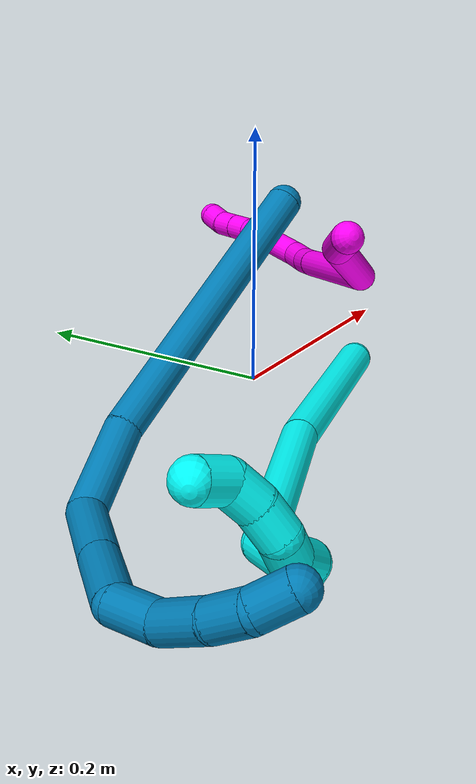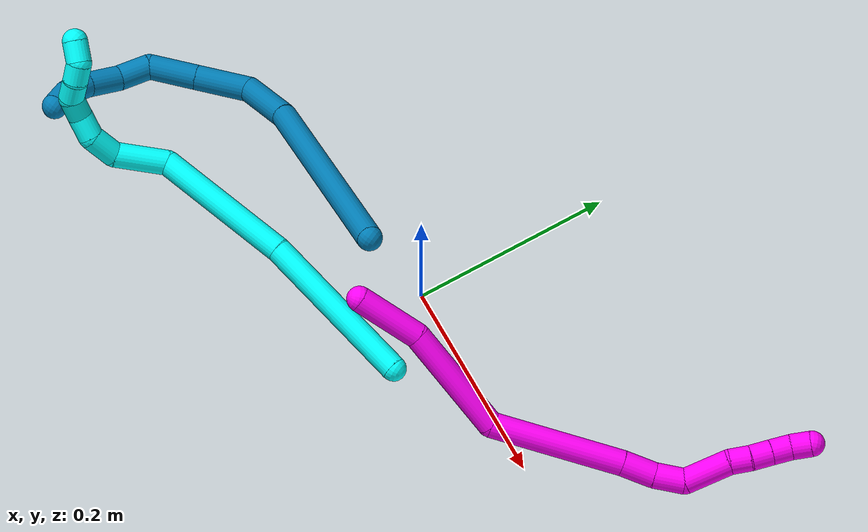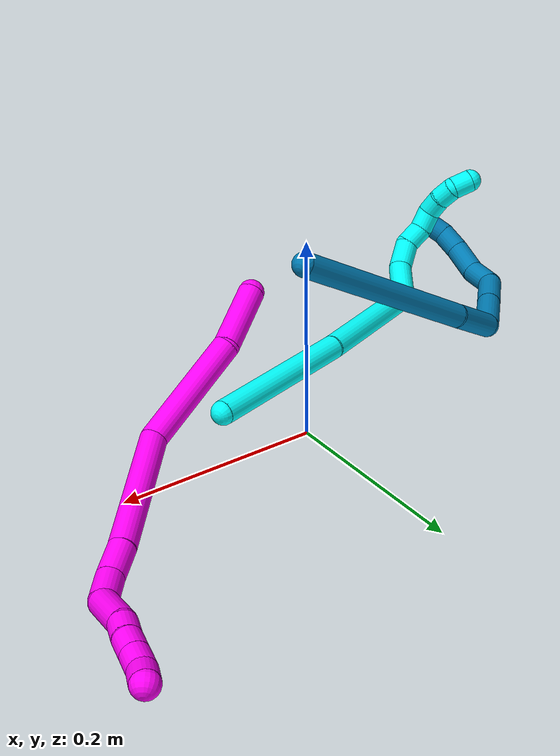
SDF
<sdf version="1.7">
 <world name="default">
  <model name="3">
   <static>0</static>
   <link name="3">
    <collision name="collision-cylinder-e_1_1_4">
     <pose>-0.014549 -0.007096 0.08056 0.08786 -0.177996 -0.007845</pose>
     <geometry><cylinder><radius>0.0125</radius><length>0.16434</length></cylinder></geometry>
     <surface>
      <friction><ode><mu>1.16</mu><mu2>1.16</mu2><slip1>0</slip1><slip2>0</slip2></ode></friction>
      <contact><ode><kp>1e+06</kp><kd>1</kd><max_vel>0</max_vel><min_depth>0.001</min_depth></ode></contact>
     </surface>
    </collision>
    <visual name="visual-cylinder-e_1_1_4">
     <pose>-0.014549 -0.007096 0.08056 0.08786 -0.177996 -0.007845</pose>
     <geometry><cylinder><radius>0.0125</radius><length>0.16434</length></cylinder></geometry>
     <material><ambient>0.003922 1 0.996078 1</ambient></material>
    </visual>
    <collision name="collision-cylinder-e_2_4_5">
     <pose>-0.032626 -0.018945 0.232584 0.066409 -0.049224 -0.001635</pose>
     <geometry><cylinder><radius>0.0125</radius><length>0.143418</length></cylinder></geometry>
     <surface>
      <friction><ode><mu>1.16</mu><mu2>1.16</mu2><slip1>0</slip1><slip2>0</slip2></ode></friction>
      <contact><ode><kp>1e+06</kp><kd>1</kd><max_vel>0</max_vel><min_depth>0.001</min_depth></ode></contact>
     </surface>
    </collision>
    <visual name="visual-cylinder-e_2_4_5">
     <pose>-0.032626 -0.018945 0.232584 0.066409 -0.049224 -0.001635</pose>
     <geometry><cylinder><radius>0.0125</radius><length>0.143418</length></cylinder></geometry>
     <material><ambient>0.003922 1 0.996078 1</ambient></material>
    </visual>
    <collision name="collision-cylinder-e_3_5_6">
     <pose>-0.026898 -0.012941 0.326605 -0.445 0.354713 -0.08106</pose>
     <geometry><cylinder><radius>0.0125</radius><length>0.053299</length></cylinder></geometry>
     <surface>
      <friction><ode><mu>1.16</mu><mu2>1.16</mu2><slip1>0</slip1><slip2>0</slip2></ode></friction>
      <contact><ode><kp>1e+06</kp><kd>1</kd><max_vel>0</max_vel><min_depth>0.001</min_depth></ode></contact>
     </surface>
    </collision>
    <visual name="visual-cylinder-e_3_5_6">
     <pose>-0.026898 -0.012941 0.326605 -0.445 0.354713 -0.08106</pose>
     <geometry><cylinder><radius>0.0125</radius><length>0.053299</length></cylinder></geometry>
     <material><ambient>0.003922 1 0.996078 1</ambient></material>
    </visual>
    <collision name="collision-cylinder-e_4_6_7">
     <pose>-0.020656 0.007183 0.360978 -0.670259 -0.197256 0.068894</pose>
     <geometry><cylinder><radius>0.0125</radius><length>0.030753</length></cylinder></geometry>
     <surface>
      <friction><ode><mu>1.16</mu><mu2>1.16</mu2><slip1>0</slip1><slip2>0</slip2></ode></friction>
      <contact><ode><kp>1e+06</kp><kd>1</kd><max_vel>0</max_vel><min_depth>0.001</min_depth></ode></contact>
     </surface>
    </collision>
    <visual name="visual-cylinder-e_4_6_7">
     <pose>-0.020656 0.007183 0.360978 -0.670259 -0.197256 0.068894</pose>
     <geometry><cylinder><radius>0.0125</radius><length>0.030753</length></cylinder></geometry>
     <material><ambient>0.003922 1 0.996078 1</ambient></material>
    </visual>
    <collision name="collision-cylinder-e_5_7_8">
     <pose>-0.030211 0.020069 0.382076 -0.362444 -0.582693 0.109785</pose>
     <geometry><cylinder><radius>0.0125</radius><length>0.023777</length></cylinder></geometry>
     <surface>
      <friction><ode><mu>1.16</mu><mu2>1.16</mu2><slip1>0</slip1><slip2>0</slip2></ode></friction>
      <contact><ode><kp>1e+06</kp><kd>1</kd><max_vel>0</max_vel><min_depth>0.001</min_depth></ode></contact>
     </surface>
    </collision>
    <visual name="visual-cylinder-e_5_7_8">
     <pose>-0.030211 0.020069 0.382076 -0.362444 -0.582693 0.109785</pose>
     <geometry><cylinder><radius>0.0125</radius><length>0.023777</length></cylinder></geometry>
     <material><ambient>0.003922 1 0.996078 1</ambient></material>
    </visual>
    <collision name="collision-cylinder-e_6_8_9">
     <pose>-0.043046 0.03055 0.397513 -0.846794 -0.5952 0.274698</pose>
     <geometry><cylinder><radius>0.0125</radius><length>0.022445</length></cylinder></geometry>
     <surface>
      <friction><ode><mu>1.16</mu><mu2>1.16</mu2><slip1>0</slip1><slip2>0</slip2></ode></friction>
      <contact><ode><kp>1e+06</kp><kd>1</kd><max_vel>0</max_vel><min_depth>0.001</min_depth></ode></contact>
     </surface>
    </collision>
    <visual name="visual-cylinder-e_6_8_9">
     <pose>-0.043046 0.03055 0.397513 -0.846794 -0.5952 0.274698</pose>
     <geometry><cylinder><radius>0.0125</radius><length>0.022445</length></cylinder></geometry>
     <material><ambient>0.003922 1 0.996078 1</ambient></material>
    </visual>
    <collision name="collision-cylinder-e_7_9_10">
     <pose>-0.058362 0.04221 0.404789 -1.3365 -1.0794 0.883431</pose>
     <geometry><cylinder><radius>0.0125</radius><length>0.020471</length></cylinder></geometry>
     <surface>
      <friction><ode><mu>1.16</mu><mu2>1.16</mu2><slip1>0</slip1><slip2>0</slip2></ode></friction>
      <contact><ode><kp>1e+06</kp><kd>1</kd><max_vel>0</max_vel><min_depth>0.001</min_depth></ode></contact>
     </surface>
    </collision>
    <visual name="visual-cylinder-e_7_9_10">
     <pose>-0.058362 0.04221 0.404789 -1.3365 -1.0794 0.883431</pose>
     <geometry><cylinder><radius>0.0125</radius><length>0.020471</length></cylinder></geometry>
     <material><ambient>0.003922 1 0.996078 1</ambient></material>
    </visual>
    <collision name="collision-cylinder-e_8_10_11">
     <pose>-0.076729 0.04982 0.408074 -0.931902 -1.20037 0.662959</pose>
     <geometry><cylinder><radius>0.0125</radius><length>0.020045</length></cylinder></geometry>
     <surface>
      <friction><ode><mu>1.16</mu><mu2>1.16</mu2><slip1>0</slip1><slip2>0</slip2></ode></friction>
      <contact><ode><kp>1e+06</kp><kd>1</kd><max_vel>0</max_vel><min_depth>0.001</min_depth></ode></contact>
     </surface>
    </collision>
    <visual name="visual-cylinder-e_8_10_11">
     <pose>-0.076729 0.04982 0.408074 -0.931902 -1.20037 0.662959</pose>
     <geometry><cylinder><radius>0.0125</radius><length>0.020045</length></cylinder></geometry>
     <material><ambient>0.003922 1 0.996078 1</ambient></material>
    </visual>
    <collision name="collision-cylinder-e_9_11_2">
     <pose>-0.093725 0.05228 0.41774 0.060165 -0.794404 -0.025245</pose>
     <geometry><cylinder><radius>0.0125</radius><length>0.021452</length></cylinder></geometry>
     <surface>
      <friction><ode><mu>1.16</mu><mu2>1.16</mu2><slip1>0</slip1><slip2>0</slip2></ode></friction>
      <contact><ode><kp>1e+06</kp><kd>1</kd><max_vel>0</max_vel><min_depth>0.001</min_depth></ode></contact>
     </surface>
    </collision>
    <visual name="visual-cylinder-e_9_11_2">
     <pose>-0.093725 0.05228 0.41774 0.060165 -0.794404 -0.025245</pose>
     <geometry><cylinder><radius>0.0125</radius><length>0.021452</length></cylinder></geometry>
     <material><ambient>0.003922 1 0.996078 1</ambient></material>
    </visual>
    <collision name="collision-sphere-2">
     <pose>-0.101377 0.051829 0.425242 0 -0 0</pose>
     <geometry><sphere><radius>0.0125</radius></sphere></geometry>
     <surface>
      <friction><ode><mu>1.16</mu><mu2>1.16</mu2><slip1>0</slip1><slip2>0</slip2></ode></friction>
      <contact><ode><kp>1e+06</kp><kd>1</kd><max_vel>0</max_vel><min_depth>0.001</min_depth></ode></contact>
     </surface>
    </collision>
    <visual name="visual-sphere-2">
     <pose>-0.101377 0.051829 0.425242 0 -0 0</pose>
     <geometry><sphere><radius>0.0125</radius></sphere></geometry>
     <material><ambient>0.003922 1 0.996078 1</ambient></material>
    </visual>
    <collision name="collision-sphere-11">
     <pose>-0.086072 0.052732 0.410238 0 -0 0</pose>
     <geometry><sphere><radius>0.0125</radius></sphere></geometry>
     <surface>
      <friction><ode><mu>1.16</mu><mu2>1.16</mu2><slip1>0</slip1><slip2>0</slip2></ode></friction>
      <contact><ode><kp>1e+06</kp><kd>1</kd><max_vel>0</max_vel><min_depth>0.001</min_depth></ode></contact>
     </surface>
    </collision>
    <visual name="visual-sphere-11">
     <pose>-0.086072 0.052732 0.410238 0 -0 0</pose>
     <geometry><sphere><radius>0.0125</radius></sphere></geometry>
     <material><ambient>0.003922 1 0.996078 1</ambient></material>
    </visual>
    <collision name="collision-sphere-10">
     <pose>-0.067387 0.046907 0.405911 0 -0 0</pose>
     <geometry><sphere><radius>0.0125</radius></sphere></geometry>
     <surface>
      <friction><ode><mu>1.16</mu><mu2>1.16</mu2><slip1>0</slip1><slip2>0</slip2></ode></friction>
      <contact><ode><kp>1e+06</kp><kd>1</kd><max_vel>0</max_vel><min_depth>0.001</min_depth></ode></contact>
     </surface>
    </collision>
    <visual name="visual-sphere-10">
     <pose>-0.067387 0.046907 0.405911 0 -0 0</pose>
     <geometry><sphere><radius>0.0125</radius></sphere></geometry>
     <material><ambient>0.003922 1 0.996078 1</ambient></material>
    </visual>
    <collision name="collision-sphere-9">
     <pose>-0.049338 0.037512 0.403668 0 -0 0</pose>
     <geometry><sphere><radius>0.0125</radius></sphere></geometry>
     <surface>
      <friction><ode><mu>1.16</mu><mu2>1.16</mu2><slip1>0</slip1><slip2>0</slip2></ode></friction>
      <contact><ode><kp>1e+06</kp><kd>1</kd><max_vel>0</max_vel><min_depth>0.001</min_depth></ode></contact>
     </surface>
    </collision>
    <visual name="visual-sphere-9">
     <pose>-0.049338 0.037512 0.403668 0 -0 0</pose>
     <geometry><sphere><radius>0.0125</radius></sphere></geometry>
     <material><ambient>0.003922 1 0.996078 1</ambient></material>
    </visual>
    <collision name="collision-sphere-4">
     <pose>-0.029098 -0.014193 0.16112 0 -0 0</pose>
     <geometry><sphere><radius>0.0125</radius></sphere></geometry>
     <surface>
      <friction><ode><mu>1.16</mu><mu2>1.16</mu2><slip1>0</slip1><slip2>0</slip2></ode></friction>
      <contact><ode><kp>1e+06</kp><kd>1</kd><max_vel>0</max_vel><min_depth>0.001</min_depth></ode></contact>
     </surface>
    </collision>
    <visual name="visual-sphere-4">
     <pose>-0.029098 -0.014193 0.16112 0 -0 0</pose>
     <geometry><sphere><radius>0.0125</radius></sphere></geometry>
     <material><ambient>0.003922 1 0.996078 1</ambient></material>
    </visual>
    <collision name="collision-sphere-1">
     <geometry><sphere><radius>0.0125</radius></sphere></geometry>
     <surface>
      <friction><ode><mu>1.16</mu><mu2>1.16</mu2><slip1>0</slip1><slip2>0</slip2></ode></friction>
      <contact><ode><kp>1e+06</kp><kd>1</kd><max_vel>0</max_vel><min_depth>0.001</min_depth></ode></contact>
     </surface>
    </collision>
    <visual name="visual-sphere-1">
     <geometry><sphere><radius>0.0125</radius></sphere></geometry>
     <material><ambient>0.003922 1 0.996078 1</ambient></material>
    </visual>
    <collision name="collision-sphere-8">
     <pose>-0.036753 0.023588 0.391357 0 -0 0</pose>
     <geometry><sphere><radius>0.0125</radius></sphere></geometry>
     <surface>
      <friction><ode><mu>1.16</mu><mu2>1.16</mu2><slip1>0</slip1><slip2>0</slip2></ode></friction>
      <contact><ode><kp>1e+06</kp><kd>1</kd><max_vel>0</max_vel><min_depth>0.001</min_depth></ode></contact>
     </surface>
    </collision>
    <visual name="visual-sphere-8">
     <pose>-0.036753 0.023588 0.391357 0 -0 0</pose>
     <geometry><sphere><radius>0.0125</radius></sphere></geometry>
     <material><ambient>0.003922 1 0.996078 1</ambient></material>
    </visual>
    <collision name="collision-sphere-5">
     <pose>-0.036154 -0.023698 0.304048 0 -0 0</pose>
     <geometry><sphere><radius>0.0125</radius></sphere></geometry>
     <surface>
      <friction><ode><mu>1.16</mu><mu2>1.16</mu2><slip1>0</slip1><slip2>0</slip2></ode></friction>
      <contact><ode><kp>1e+06</kp><kd>1</kd><max_vel>0</max_vel><min_depth>0.001</min_depth></ode></contact>
     </surface>
    </collision>
    <visual name="visual-sphere-5">
     <pose>-0.036154 -0.023698 0.304048 0 -0 0</pose>
     <geometry><sphere><radius>0.0125</radius></sphere></geometry>
     <material><ambient>0.003922 1 0.996078 1</ambient></material>
    </visual>
    <collision name="collision-sphere-6">
     <pose>-0.017643 -0.002184 0.349161 0 -0 0</pose>
     <geometry><sphere><radius>0.0125</radius></sphere></geometry>
     <surface>
      <friction><ode><mu>1.16</mu><mu2>1.16</mu2><slip1>0</slip1><slip2>0</slip2></ode></friction>
      <contact><ode><kp>1e+06</kp><kd>1</kd><max_vel>0</max_vel><min_depth>0.001</min_depth></ode></contact>
     </surface>
    </collision>
    <visual name="visual-sphere-6">
     <pose>-0.017643 -0.002184 0.349161 0 -0 0</pose>
     <geometry><sphere><radius>0.0125</radius></sphere></geometry>
     <material><ambient>0.003922 1 0.996078 1</ambient></material>
    </visual>
    <collision name="collision-sphere-7">
     <pose>-0.02367 0.016549 0.372794 0 -0 0</pose>
     <geometry><sphere><radius>0.0125</radius></sphere></geometry>
     <surface>
      <friction><ode><mu>1.16</mu><mu2>1.16</mu2><slip1>0</slip1><slip2>0</slip2></ode></friction>
      <contact><ode><kp>1e+06</kp><kd>1</kd><max_vel>0</max_vel><min_depth>0.001</min_depth></ode></contact>
     </surface>
    </collision>
    <visual name="visual-sphere-7">
     <pose>-0.02367 0.016549 0.372794 0 -0 0</pose>
     <geometry><sphere><radius>0.0125</radius></sphere></geometry>
     <material><ambient>0.003922 1 0.996078 1</ambient></material>
    </visual>
    <inertial>
     <pose>-0.031134 -0.00041 0.237078 0 -0 0</pose>
     <mass>0.5</mass>
     <inertia>
      <ixx>0.000633</ixx>
      <ixy>0</ixy>
      <ixz>0</ixz>
      <iyy>0.000651</iyy>
      <iyz>0</iyz>
      <izz>0.000152</izz>
     </inertia>
    </inertial>
   </link>
   <pose>0.054867 -0.06134 0.012221 1.56085 0.502055 -1.13867</pose>
  </model>
  <model name="9">
   <static>0</static>
   <link name="9">
    <collision name="collision-cylinder-e_1_1_4">
     <pose>-0.050338 0.060957 0.07365 -0.69138 -0.484639 0.177574</pose>
     <geometry><cylinder><radius>0.0125</radius><length>0.216093</length></cylinder></geometry>
     <surface>
      <friction><ode><mu>1.16</mu><mu2>1.16</mu2><slip1>0</slip1><slip2>0</slip2></ode></friction>
      <contact><ode><kp>1e+06</kp><kd>1</kd><max_vel>0</max_vel><min_depth>0.001</min_depth></ode></contact>
     </surface>
    </collision>
    <visual name="visual-cylinder-e_1_1_4">
     <pose>-0.050338 0.060957 0.07365 -0.69138 -0.484639 0.177574</pose>
     <geometry><cylinder><radius>0.0125</radius><length>0.216093</length></cylinder></geometry>
     <material><ambient>0 0.490196 0.709804 1</ambient></material>
    </visual>
    <collision name="collision-cylinder-e_2_4_5">
     <pose>-0.117917 0.134021 0.170887 -0.474203 -0.576623 0.143088</pose>
     <geometry><cylinder><radius>0.0125</radius><length>0.063251</length></cylinder></geometry>
     <surface>
      <friction><ode><mu>1.16</mu><mu2>1.16</mu2><slip1>0</slip1><slip2>0</slip2></ode></friction>
      <contact><ode><kp>1e+06</kp><kd>1</kd><max_vel>0</max_vel><min_depth>0.001</min_depth></ode></contact>
     </surface>
    </collision>
    <visual name="visual-cylinder-e_2_4_5">
     <pose>-0.117917 0.134021 0.170887 -0.474203 -0.576623 0.143088</pose>
     <geometry><cylinder><radius>0.0125</radius><length>0.063251</length></cylinder></geometry>
     <material><ambient>0 0.490196 0.709804 1</ambient></material>
    </visual>
    <collision name="collision-cylinder-e_3_5_6">
     <pose>-0.142414 0.138209 0.219318 0.308505 -0.271356 -0.042447</pose>
     <geometry><cylinder><radius>0.0125</radius><length>0.054133</length></cylinder></geometry>
     <surface>
      <friction><ode><mu>1.16</mu><mu2>1.16</mu2><slip1>0</slip1><slip2>0</slip2></ode></friction>
      <contact><ode><kp>1e+06</kp><kd>1</kd><max_vel>0</max_vel><min_depth>0.001</min_depth></ode></contact>
     </surface>
    </collision>
    <visual name="visual-cylinder-e_3_5_6">
     <pose>-0.142414 0.138209 0.219318 0.308505 -0.271356 -0.042447</pose>
     <geometry><cylinder><radius>0.0125</radius><length>0.054133</length></cylinder></geometry>
     <material><ambient>0 0.490196 0.709804 1</ambient></material>
    </visual>
    <collision name="collision-cylinder-e_4_6_7">
     <pose>-0.15549 0.12284 0.266257 0.325306 -0.244642 -0.040342</pose>
     <geometry><cylinder><radius>0.0125</radius><length>0.048064</length></cylinder></geometry>
     <surface>
      <friction><ode><mu>1.16</mu><mu2>1.16</mu2><slip1>0</slip1><slip2>0</slip2></ode></friction>
      <contact><ode><kp>1e+06</kp><kd>1</kd><max_vel>0</max_vel><min_depth>0.001</min_depth></ode></contact>
     </surface>
    </collision>
    <visual name="visual-cylinder-e_4_6_7">
     <pose>-0.15549 0.12284 0.266257 0.325306 -0.244642 -0.040342</pose>
     <geometry><cylinder><radius>0.0125</radius><length>0.048064</length></cylinder></geometry>
     <material><ambient>0 0.490196 0.709804 1</ambient></material>
    </visual>
    <collision name="collision-cylinder-e_5_7_8">
     <pose>-0.165951 0.102274 0.296809 0.997915 -0.289036 -0.158284</pose>
     <geometry><cylinder><radius>0.0125</radius><length>0.032563</length></cylinder></geometry>
     <surface>
      <friction><ode><mu>1.16</mu><mu2>1.16</mu2><slip1>0</slip1><slip2>0</slip2></ode></friction>
      <contact><ode><kp>1e+06</kp><kd>1</kd><max_vel>0</max_vel><min_depth>0.001</min_depth></ode></contact>
     </surface>
    </collision>
    <visual name="visual-cylinder-e_5_7_8">
     <pose>-0.165951 0.102274 0.296809 0.997915 -0.289036 -0.158284</pose>
     <geometry><cylinder><radius>0.0125</radius><length>0.032563</length></cylinder></geometry>
     <material><ambient>0 0.490196 0.709804 1</ambient></material>
    </visual>
    <collision name="collision-cylinder-e_6_8_9">
     <pose>-0.169144 0.074179 0.314557 1.01581 0.081963 0.045639</pose>
     <geometry><cylinder><radius>0.0125</radius><length>0.035372</length></cylinder></geometry>
     <surface>
      <friction><ode><mu>1.16</mu><mu2>1.16</mu2><slip1>0</slip1><slip2>0</slip2></ode></friction>
      <contact><ode><kp>1e+06</kp><kd>1</kd><max_vel>0</max_vel><min_depth>0.001</min_depth></ode></contact>
     </surface>
    </collision>
    <visual name="visual-cylinder-e_6_8_9">
     <pose>-0.169144 0.074179 0.314557 1.01581 0.081963 0.045639</pose>
     <geometry><cylinder><radius>0.0125</radius><length>0.035372</length></cylinder></geometry>
     <material><ambient>0 0.490196 0.709804 1</ambient></material>
    </visual>
    <collision name="collision-cylinder-e_7_9_10">
     <pose>-0.16581 0.047402 0.328581 1.18895 0.147297 0.099679</pose>
     <geometry><cylinder><radius>0.0125</radius><length>0.025702</length></cylinder></geometry>
     <surface>
      <friction><ode><mu>1.16</mu><mu2>1.16</mu2><slip1>0</slip1><slip2>0</slip2></ode></friction>
      <contact><ode><kp>1e+06</kp><kd>1</kd><max_vel>0</max_vel><min_depth>0.001</min_depth></ode></contact>
     </surface>
    </collision>
    <visual name="visual-cylinder-e_7_9_10">
     <pose>-0.16581 0.047402 0.328581 1.18895 0.147297 0.099679</pose>
     <geometry><cylinder><radius>0.0125</radius><length>0.025702</length></cylinder></geometry>
     <material><ambient>0 0.490196 0.709804 1</ambient></material>
    </visual>
    <collision name="collision-cylinder-e_8_10_2">
     <pose>-0.161298 0.023481 0.332906 1.6048 0.213142 0.220458</pose>
     <geometry><cylinder><radius>0.0125</radius><length>0.024824</length></cylinder></geometry>
     <surface>
      <friction><ode><mu>1.16</mu><mu2>1.16</mu2><slip1>0</slip1><slip2>0</slip2></ode></friction>
      <contact><ode><kp>1e+06</kp><kd>1</kd><max_vel>0</max_vel><min_depth>0.001</min_depth></ode></contact>
     </surface>
    </collision>
    <visual name="visual-cylinder-e_8_10_2">
     <pose>-0.161298 0.023481 0.332906 1.6048 0.213142 0.220458</pose>
     <geometry><cylinder><radius>0.0125</radius><length>0.024824</length></cylinder></geometry>
     <material><ambient>0 0.490196 0.709804 1</ambient></material>
    </visual>
    <collision name="collision-sphere-2">
     <pose>-0.158673 0.011357 0.332493 0 -0 0</pose>
     <geometry><sphere><radius>0.0125</radius></sphere></geometry>
     <surface>
      <friction><ode><mu>1.16</mu><mu2>1.16</mu2><slip1>0</slip1><slip2>0</slip2></ode></friction>
      <contact><ode><kp>1e+06</kp><kd>1</kd><max_vel>0</max_vel><min_depth>0.001</min_depth></ode></contact>
     </surface>
    </collision>
    <visual name="visual-sphere-2">
     <pose>-0.158673 0.011357 0.332493 0 -0 0</pose>
     <geometry><sphere><radius>0.0125</radius></sphere></geometry>
     <material><ambient>0 0.490196 0.709804 1</ambient></material>
    </visual>
    <collision name="collision-sphere-10">
     <pose>-0.163924 0.035605 0.333318 0 -0 0</pose>
     <geometry><sphere><radius>0.0125</radius></sphere></geometry>
     <surface>
      <friction><ode><mu>1.16</mu><mu2>1.16</mu2><slip1>0</slip1><slip2>0</slip2></ode></friction>
      <contact><ode><kp>1e+06</kp><kd>1</kd><max_vel>0</max_vel><min_depth>0.001</min_depth></ode></contact>
     </surface>
    </collision>
    <visual name="visual-sphere-10">
     <pose>-0.163924 0.035605 0.333318 0 -0 0</pose>
     <geometry><sphere><radius>0.0125</radius></sphere></geometry>
     <material><ambient>0 0.490196 0.709804 1</ambient></material>
    </visual>
    <collision name="collision-sphere-9">
     <pose>-0.167696 0.059198 0.323844 0 -0 0</pose>
     <geometry><sphere><radius>0.0125</radius></sphere></geometry>
     <surface>
      <friction><ode><mu>1.16</mu><mu2>1.16</mu2><slip1>0</slip1><slip2>0</slip2></ode></friction>
      <contact><ode><kp>1e+06</kp><kd>1</kd><max_vel>0</max_vel><min_depth>0.001</min_depth></ode></contact>
     </surface>
    </collision>
    <visual name="visual-sphere-9">
     <pose>-0.167696 0.059198 0.323844 0 -0 0</pose>
     <geometry><sphere><radius>0.0125</radius></sphere></geometry>
     <material><ambient>0 0.490196 0.709804 1</ambient></material>
    </visual>
    <collision name="collision-sphere-4">
     <pose>-0.100675 0.121915 0.147301 0 -0 0</pose>
     <geometry><sphere><radius>0.0125</radius></sphere></geometry>
     <surface>
      <friction><ode><mu>1.16</mu><mu2>1.16</mu2><slip1>0</slip1><slip2>0</slip2></ode></friction>
      <contact><ode><kp>1e+06</kp><kd>1</kd><max_vel>0</max_vel><min_depth>0.001</min_depth></ode></contact>
     </surface>
    </collision>
    <visual name="visual-sphere-4">
     <pose>-0.100675 0.121915 0.147301 0 -0 0</pose>
     <geometry><sphere><radius>0.0125</radius></sphere></geometry>
     <material><ambient>0 0.490196 0.709804 1</ambient></material>
    </visual>
    <collision name="collision-sphere-1">
     <geometry><sphere><radius>0.0125</radius></sphere></geometry>
     <surface>
      <friction><ode><mu>1.16</mu><mu2>1.16</mu2><slip1>0</slip1><slip2>0</slip2></ode></friction>
      <contact><ode><kp>1e+06</kp><kd>1</kd><max_vel>0</max_vel><min_depth>0.001</min_depth></ode></contact>
     </surface>
    </collision>
    <visual name="visual-sphere-1">
     <geometry><sphere><radius>0.0125</radius></sphere></geometry>
     <material><ambient>0 0.490196 0.709804 1</ambient></material>
    </visual>
    <collision name="collision-sphere-8">
     <pose>-0.170592 0.089159 0.305269 0 -0 0</pose>
     <geometry><sphere><radius>0.0125</radius></sphere></geometry>
     <surface>
      <friction><ode><mu>1.16</mu><mu2>1.16</mu2><slip1>0</slip1><slip2>0</slip2></ode></friction>
      <contact><ode><kp>1e+06</kp><kd>1</kd><max_vel>0</max_vel><min_depth>0.001</min_depth></ode></contact>
     </surface>
    </collision>
    <visual name="visual-sphere-8">
     <pose>-0.170592 0.089159 0.305269 0 -0 0</pose>
     <geometry><sphere><radius>0.0125</radius></sphere></geometry>
     <material><ambient>0 0.490196 0.709804 1</ambient></material>
    </visual>
    <collision name="collision-sphere-5">
     <pose>-0.135159 0.146127 0.194474 0 -0 0</pose>
     <geometry><sphere><radius>0.0125</radius></sphere></geometry>
     <surface>
      <friction><ode><mu>1.16</mu><mu2>1.16</mu2><slip1>0</slip1><slip2>0</slip2></ode></friction>
      <contact><ode><kp>1e+06</kp><kd>1</kd><max_vel>0</max_vel><min_depth>0.001</min_depth></ode></contact>
     </surface>
    </collision>
    <visual name="visual-sphere-5">
     <pose>-0.135159 0.146127 0.194474 0 -0 0</pose>
     <geometry><sphere><radius>0.0125</radius></sphere></geometry>
     <material><ambient>0 0.490196 0.709804 1</ambient></material>
    </visual>
    <collision name="collision-sphere-6">
     <pose>-0.149669 0.130292 0.244163 0 -0 0</pose>
     <geometry><sphere><radius>0.0125</radius></sphere></geometry>
     <surface>
      <friction><ode><mu>1.16</mu><mu2>1.16</mu2><slip1>0</slip1><slip2>0</slip2></ode></friction>
      <contact><ode><kp>1e+06</kp><kd>1</kd><max_vel>0</max_vel><min_depth>0.001</min_depth></ode></contact>
     </surface>
    </collision>
    <visual name="visual-sphere-6">
     <pose>-0.149669 0.130292 0.244163 0 -0 0</pose>
     <geometry><sphere><radius>0.0125</radius></sphere></geometry>
     <material><ambient>0 0.490196 0.709804 1</ambient></material>
    </visual>
    <collision name="collision-sphere-7">
     <pose>-0.16131 0.115388 0.28835 0 -0 0</pose>
     <geometry><sphere><radius>0.0125</radius></sphere></geometry>
     <surface>
      <friction><ode><mu>1.16</mu><mu2>1.16</mu2><slip1>0</slip1><slip2>0</slip2></ode></friction>
      <contact><ode><kp>1e+06</kp><kd>1</kd><max_vel>0</max_vel><min_depth>0.001</min_depth></ode></contact>
     </surface>
    </collision>
    <visual name="visual-sphere-7">
     <pose>-0.16131 0.115388 0.28835 0 -0 0</pose>
     <geometry><sphere><radius>0.0125</radius></sphere></geometry>
     <material><ambient>0 0.490196 0.709804 1</ambient></material>
    </visual>
    <inertial>
     <pose>-0.106342 0.085581 0.177788 0 -0 0</pose>
     <mass>0.5</mass>
     <inertia>
      <ixx>0.000921</ixx>
      <ixy>0</ixy>
      <ixz>0</ixz>
      <iyy>0.000877</iyy>
      <iyz>0</iyz>
      <izz>-2.7e-05</izz>
     </inertia>
    </inertial>
   </link>
   <pose>-0.026948 -0.040531 0.154541 -1.09056 -1.23344 1.55745</pose>
  </model>
  <model name="10">
   <static>0</static>
   <link name="10">
    <collision name="collision-cylinder-e_1_1_4">
     <pose>0.00665 0.007216 0.031538 -0.224923 0.20272 -0.022973</pose>
     <geometry><cylinder><radius>0.0125</radius><length>0.066059</length></cylinder></geometry>
     <surface>
      <friction><ode><mu>1.16</mu><mu2>1.16</mu2><slip1>0</slip1><slip2>0</slip2></ode></friction>
      <contact><ode><kp>1e+06</kp><kd>1</kd><max_vel>0</max_vel><min_depth>0.001</min_depth></ode></contact>
     </surface>
    </collision>
    <visual name="visual-cylinder-e_1_1_4">
     <pose>0.00665 0.007216 0.031538 -0.224923 0.20272 -0.022973</pose>
     <geometry><cylinder><radius>0.0125</radius><length>0.066059</length></cylinder></geometry>
     <material><ambient>1 0 0.964706 1</ambient></material>
    </visual>
    <collision name="collision-cylinder-e_2_4_5">
     <pose>0.029924 0.041208 0.109519 -0.523008 0.300702 -0.081045</pose>
     <geometry><cylinder><radius>0.0125</radius><length>0.112254</length></cylinder></geometry>
     <surface>
      <friction><ode><mu>1.16</mu><mu2>1.16</mu2><slip1>0</slip1><slip2>0</slip2></ode></friction>
      <contact><ode><kp>1e+06</kp><kd>1</kd><max_vel>0</max_vel><min_depth>0.001</min_depth></ode></contact>
     </surface>
    </collision>
    <visual name="visual-cylinder-e_2_4_5">
     <pose>0.029924 0.041208 0.109519 -0.523008 0.300702 -0.081045</pose>
     <geometry><cylinder><radius>0.0125</radius><length>0.112254</length></cylinder></geometry>
     <material><ambient>1 0 0.964706 1</ambient></material>
    </visual>
    <collision name="collision-cylinder-e_3_5_6">
     <pose>0.059163 0.0624 0.220341 0.086545 0.192775 0.008373</pose>
     <geometry><cylinder><radius>0.0125</radius><length>0.131681</length></cylinder></geometry>
     <surface>
      <friction><ode><mu>1.16</mu><mu2>1.16</mu2><slip1>0</slip1><slip2>0</slip2></ode></friction>
      <contact><ode><kp>1e+06</kp><kd>1</kd><max_vel>0</max_vel><min_depth>0.001</min_depth></ode></contact>
     </surface>
    </collision>
    <visual name="visual-cylinder-e_3_5_6">
     <pose>0.059163 0.0624 0.220341 0.086545 0.192775 0.008373</pose>
     <geometry><cylinder><radius>0.0125</radius><length>0.131681</length></cylinder></geometry>
     <material><ambient>1 0 0.964706 1</ambient></material>
    </visual>
    <collision name="collision-cylinder-e_4_6_7">
     <pose>0.075817 0.056478 0.300634 0.021135 0.248589 0.002641</pose>
     <geometry><cylinder><radius>0.0125</radius><length>0.032845</length></cylinder></geometry>
     <surface>
      <friction><ode><mu>1.16</mu><mu2>1.16</mu2><slip1>0</slip1><slip2>0</slip2></ode></friction>
      <contact><ode><kp>1e+06</kp><kd>1</kd><max_vel>0</max_vel><min_depth>0.001</min_depth></ode></contact>
     </surface>
    </collision>
    <visual name="visual-cylinder-e_4_6_7">
     <pose>0.075817 0.056478 0.300634 0.021135 0.248589 0.002641</pose>
     <geometry><cylinder><radius>0.0125</radius><length>0.032845</length></cylinder></geometry>
     <material><ambient>1 0 0.964706 1</ambient></material>
    </visual>
    <collision name="collision-cylinder-e_5_7_8">
     <pose>0.083695 0.052728 0.330654 0.237405 0.258499 0.031</pose>
     <geometry><cylinder><radius>0.0125</radius><length>0.030025</length></cylinder></geometry>
     <surface>
      <friction><ode><mu>1.16</mu><mu2>1.16</mu2><slip1>0</slip1><slip2>0</slip2></ode></friction>
      <contact><ode><kp>1e+06</kp><kd>1</kd><max_vel>0</max_vel><min_depth>0.001</min_depth></ode></contact>
     </surface>
    </collision>
    <visual name="visual-cylinder-e_5_7_8">
     <pose>0.083695 0.052728 0.330654 0.237405 0.258499 0.031</pose>
     <geometry><cylinder><radius>0.0125</radius><length>0.030025</length></cylinder></geometry>
     <material><ambient>1 0 0.964706 1</ambient></material>
    </visual>
    <collision name="collision-cylinder-e_6_8_9">
     <pose>0.08758 0.032639 0.360856 0.803133 0.002039 0.000866</pose>
     <geometry><cylinder><radius>0.0125</radius><length>0.046352</length></cylinder></geometry>
     <surface>
      <friction><ode><mu>1.16</mu><mu2>1.16</mu2><slip1>0</slip1><slip2>0</slip2></ode></friction>
      <contact><ode><kp>1e+06</kp><kd>1</kd><max_vel>0</max_vel><min_depth>0.001</min_depth></ode></contact>
     </surface>
    </collision>
    <visual name="visual-cylinder-e_6_8_9">
     <pose>0.08758 0.032639 0.360856 0.803133 0.002039 0.000866</pose>
     <geometry><cylinder><radius>0.0125</radius><length>0.046352</length></cylinder></geometry>
     <material><ambient>1 0 0.964706 1</ambient></material>
    </visual>
    <collision name="collision-cylinder-e_7_9_10">
     <pose>0.088069 0.010698 0.385607 0.546395 0.043552 0.012205</pose>
     <geometry><cylinder><radius>0.0125</radius><length>0.020283</length></cylinder></geometry>
     <surface>
      <friction><ode><mu>1.16</mu><mu2>1.16</mu2><slip1>0</slip1><slip2>0</slip2></ode></friction>
      <contact><ode><kp>1e+06</kp><kd>1</kd><max_vel>0</max_vel><min_depth>0.001</min_depth></ode></contact>
     </surface>
    </collision>
    <visual name="visual-cylinder-e_7_9_10">
     <pose>0.088069 0.010698 0.385607 0.546395 0.043552 0.012205</pose>
     <geometry><cylinder><radius>0.0125</radius><length>0.020283</length></cylinder></geometry>
     <material><ambient>1 0 0.964706 1</ambient></material>
    </visual>
    <collision name="collision-cylinder-e_8_10_11">
     <pose>0.087722 -1.1e-05 0.402765 0.569599 -0.077931 -0.022826</pose>
     <geometry><cylinder><radius>0.0125</radius><length>0.020251</length></cylinder></geometry>
     <surface>
      <friction><ode><mu>1.16</mu><mu2>1.16</mu2><slip1>0</slip1><slip2>0</slip2></ode></friction>
      <contact><ode><kp>1e+06</kp><kd>1</kd><max_vel>0</max_vel><min_depth>0.001</min_depth></ode></contact>
     </surface>
    </collision>
    <visual name="visual-cylinder-e_8_10_11">
     <pose>0.087722 -1.1e-05 0.402765 0.569599 -0.077931 -0.022826</pose>
     <geometry><cylinder><radius>0.0125</radius><length>0.020251</length></cylinder></geometry>
     <material><ambient>1 0 0.964706 1</ambient></material>
    </visual>
    <collision name="collision-cylinder-e_9_11_12">
     <pose>0.086196 -0.010791 0.419757 0.561108 -0.073429 -0.021168</pose>
     <geometry><cylinder><radius>0.0125</radius><length>0.020113</length></cylinder></geometry>
     <surface>
      <friction><ode><mu>1.16</mu><mu2>1.16</mu2><slip1>0</slip1><slip2>0</slip2></ode></friction>
      <contact><ode><kp>1e+06</kp><kd>1</kd><max_vel>0</max_vel><min_depth>0.001</min_depth></ode></contact>
     </surface>
    </collision>
    <visual name="visual-cylinder-e_9_11_12">
     <pose>0.086196 -0.010791 0.419757 0.561108 -0.073429 -0.021168</pose>
     <geometry><cylinder><radius>0.0125</radius><length>0.020113</length></cylinder></geometry>
     <material><ambient>1 0 0.964706 1</ambient></material>
    </visual>
    <collision name="collision-cylinder-e_10_12_2">
     <pose>0.087374 -0.02193 0.436252 0.627227 0.1914 0.062244</pose>
     <geometry><cylinder><radius>0.0125</radius><length>0.020136</length></cylinder></geometry>
     <surface>
      <friction><ode><mu>1.16</mu><mu2>1.16</mu2><slip1>0</slip1><slip2>0</slip2></ode></friction>
      <contact><ode><kp>1e+06</kp><kd>1</kd><max_vel>0</max_vel><min_depth>0.001</min_depth></ode></contact>
     </surface>
    </collision>
    <visual name="visual-cylinder-e_10_12_2">
     <pose>0.087374 -0.02193 0.436252 0.627227 0.1914 0.062244</pose>
     <geometry><cylinder><radius>0.0125</radius><length>0.020136</length></cylinder></geometry>
     <material><ambient>1 0 0.964706 1</ambient></material>
    </visual>
    <collision name="collision-sphere-2">
     <pose>0.089289 -0.027731 0.444255 0 -0 0</pose>
     <geometry><sphere><radius>0.0125</radius></sphere></geometry>
     <surface>
      <friction><ode><mu>1.16</mu><mu2>1.16</mu2><slip1>0</slip1><slip2>0</slip2></ode></friction>
      <contact><ode><kp>1e+06</kp><kd>1</kd><max_vel>0</max_vel><min_depth>0.001</min_depth></ode></contact>
     </surface>
    </collision>
    <visual name="visual-sphere-2">
     <pose>0.089289 -0.027731 0.444255 0 -0 0</pose>
     <geometry><sphere><radius>0.0125</radius></sphere></geometry>
     <material><ambient>1 0 0.964706 1</ambient></material>
    </visual>
    <collision name="collision-sphere-12">
     <pose>0.085458 -0.016128 0.428249 0 -0 0</pose>
     <geometry><sphere><radius>0.0125</radius></sphere></geometry>
     <surface>
      <friction><ode><mu>1.16</mu><mu2>1.16</mu2><slip1>0</slip1><slip2>0</slip2></ode></friction>
      <contact><ode><kp>1e+06</kp><kd>1</kd><max_vel>0</max_vel><min_depth>0.001</min_depth></ode></contact>
     </surface>
    </collision>
    <visual name="visual-sphere-12">
     <pose>0.085458 -0.016128 0.428249 0 -0 0</pose>
     <geometry><sphere><radius>0.0125</radius></sphere></geometry>
     <material><ambient>1 0 0.964706 1</ambient></material>
    </visual>
    <collision name="collision-sphere-11">
     <pose>0.086934 -0.005455 0.411265 0 -0 0</pose>
     <geometry><sphere><radius>0.0125</radius></sphere></geometry>
     <surface>
      <friction><ode><mu>1.16</mu><mu2>1.16</mu2><slip1>0</slip1><slip2>0</slip2></ode></friction>
      <contact><ode><kp>1e+06</kp><kd>1</kd><max_vel>0</max_vel><min_depth>0.001</min_depth></ode></contact>
     </surface>
    </collision>
    <visual name="visual-sphere-11">
     <pose>0.086934 -0.005455 0.411265 0 -0 0</pose>
     <geometry><sphere><radius>0.0125</radius></sphere></geometry>
     <material><ambient>1 0 0.964706 1</ambient></material>
    </visual>
    <collision name="collision-sphere-10">
     <pose>0.08851 0.005433 0.394264 0 -0 0</pose>
     <geometry><sphere><radius>0.0125</radius></sphere></geometry>
     <surface>
      <friction><ode><mu>1.16</mu><mu2>1.16</mu2><slip1>0</slip1><slip2>0</slip2></ode></friction>
      <contact><ode><kp>1e+06</kp><kd>1</kd><max_vel>0</max_vel><min_depth>0.001</min_depth></ode></contact>
     </surface>
    </collision>
    <visual name="visual-sphere-10">
     <pose>0.08851 0.005433 0.394264 0 -0 0</pose>
     <geometry><sphere><radius>0.0125</radius></sphere></geometry>
     <material><ambient>1 0 0.964706 1</ambient></material>
    </visual>
    <collision name="collision-sphere-9">
     <pose>0.087627 0.015963 0.37695 0 -0 0</pose>
     <geometry><sphere><radius>0.0125</radius></sphere></geometry>
     <surface>
      <friction><ode><mu>1.16</mu><mu2>1.16</mu2><slip1>0</slip1><slip2>0</slip2></ode></friction>
      <contact><ode><kp>1e+06</kp><kd>1</kd><max_vel>0</max_vel><min_depth>0.001</min_depth></ode></contact>
     </surface>
    </collision>
    <visual name="visual-sphere-9">
     <pose>0.087627 0.015963 0.37695 0 -0 0</pose>
     <geometry><sphere><radius>0.0125</radius></sphere></geometry>
     <material><ambient>1 0 0.964706 1</ambient></material>
    </visual>
    <collision name="collision-sphere-4">
     <pose>0.0133 0.014432 0.063077 0 -0 0</pose>
     <geometry><sphere><radius>0.0125</radius></sphere></geometry>
     <surface>
      <friction><ode><mu>1.16</mu><mu2>1.16</mu2><slip1>0</slip1><slip2>0</slip2></ode></friction>
      <contact><ode><kp>1e+06</kp><kd>1</kd><max_vel>0</max_vel><min_depth>0.001</min_depth></ode></contact>
     </surface>
    </collision>
    <visual name="visual-sphere-4">
     <pose>0.0133 0.014432 0.063077 0 -0 0</pose>
     <geometry><sphere><radius>0.0125</radius></sphere></geometry>
     <material><ambient>1 0 0.964706 1</ambient></material>
    </visual>
    <collision name="collision-sphere-1">
     <geometry><sphere><radius>0.0125</radius></sphere></geometry>
     <surface>
      <friction><ode><mu>1.16</mu><mu2>1.16</mu2><slip1>0</slip1><slip2>0</slip2></ode></friction>
      <contact><ode><kp>1e+06</kp><kd>1</kd><max_vel>0</max_vel><min_depth>0.001</min_depth></ode></contact>
     </surface>
    </collision>
    <visual name="visual-sphere-1">
     <geometry><sphere><radius>0.0125</radius></sphere></geometry>
     <material><ambient>1 0 0.964706 1</ambient></material>
    </visual>
    <collision name="collision-sphere-8">
     <pose>0.087533 0.049315 0.344761 0 -0 0</pose>
     <geometry><sphere><radius>0.0125</radius></sphere></geometry>
     <surface>
      <friction><ode><mu>1.16</mu><mu2>1.16</mu2><slip1>0</slip1><slip2>0</slip2></ode></friction>
      <contact><ode><kp>1e+06</kp><kd>1</kd><max_vel>0</max_vel><min_depth>0.001</min_depth></ode></contact>
     </surface>
    </collision>
    <visual name="visual-sphere-8">
     <pose>0.087533 0.049315 0.344761 0 -0 0</pose>
     <geometry><sphere><radius>0.0125</radius></sphere></geometry>
     <material><ambient>1 0 0.964706 1</ambient></material>
    </visual>
    <collision name="collision-sphere-5">
     <pose>0.046549 0.067985 0.155961 0 -0 0</pose>
     <geometry><sphere><radius>0.0125</radius></sphere></geometry>
     <surface>
      <friction><ode><mu>1.16</mu><mu2>1.16</mu2><slip1>0</slip1><slip2>0</slip2></ode></friction>
      <contact><ode><kp>1e+06</kp><kd>1</kd><max_vel>0</max_vel><min_depth>0.001</min_depth></ode></contact>
     </surface>
    </collision>
    <visual name="visual-sphere-5">
     <pose>0.046549 0.067985 0.155961 0 -0 0</pose>
     <geometry><sphere><radius>0.0125</radius></sphere></geometry>
     <material><ambient>1 0 0.964706 1</ambient></material>
    </visual>
    <collision name="collision-sphere-6">
     <pose>0.071777 0.056814 0.28472 0 -0 0</pose>
     <geometry><sphere><radius>0.0125</radius></sphere></geometry>
     <surface>
      <friction><ode><mu>1.16</mu><mu2>1.16</mu2><slip1>0</slip1><slip2>0</slip2></ode></friction>
      <contact><ode><kp>1e+06</kp><kd>1</kd><max_vel>0</max_vel><min_depth>0.001</min_depth></ode></contact>
     </surface>
    </collision>
    <visual name="visual-sphere-6">
     <pose>0.071777 0.056814 0.28472 0 -0 0</pose>
     <geometry><sphere><radius>0.0125</radius></sphere></geometry>
     <material><ambient>1 0 0.964706 1</ambient></material>
    </visual>
    <collision name="collision-sphere-7">
     <pose>0.079858 0.056141 0.316548 0 -0 0</pose>
     <geometry><sphere><radius>0.0125</radius></sphere></geometry>
     <surface>
      <friction><ode><mu>1.16</mu><mu2>1.16</mu2><slip1>0</slip1><slip2>0</slip2></ode></friction>
      <contact><ode><kp>1e+06</kp><kd>1</kd><max_vel>0</max_vel><min_depth>0.001</min_depth></ode></contact>
     </surface>
    </collision>
    <visual name="visual-sphere-7">
     <pose>0.079858 0.056141 0.316548 0 -0 0</pose>
     <geometry><sphere><radius>0.0125</radius></sphere></geometry>
     <material><ambient>1 0 0.964706 1</ambient></material>
    </visual>
    <inertial>
     <pose>0.055415 0.035657 0.226251 0 -0 0</pose>
     <mass>0.5</mass>
     <inertia>
      <ixx>0.000356</ixx>
      <ixy>0</ixy>
      <ixz>0</ixz>
      <iyy>0.000337</iyy>
      <iyz>0</iyz>
      <izz>-8.3e-05</izz>
     </inertia>
    </inertial>
   </link>
   <pose>0.012016 -0.07309 0.123755 -2.06684 -0.653597 -0.338734</pose>
  </model>
 </world>
</sdf>
